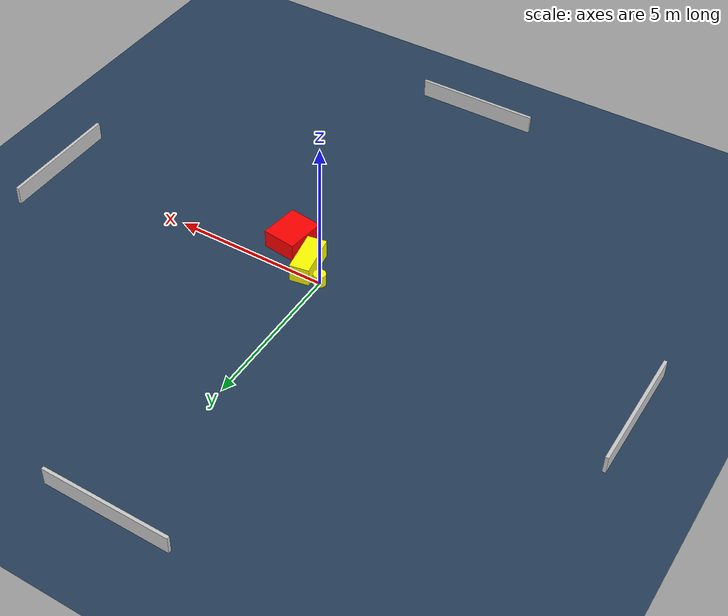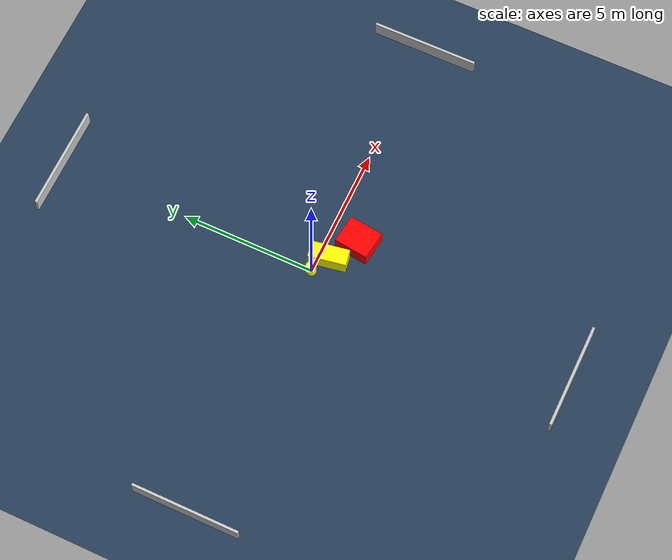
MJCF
<?xml version="1.0" ?>
<mujoco model="generated_environment">
  <option timestep="0.01" integrator="RK4" cone="elliptic"/>
  <default>
    <geom density="1"/>
  </default>
  <asset>
    <texture builtin="gradient" height="3072" name="skybox" rgb1="0.3 0.5 0.7" rgb2="0 0 0" type="skybox" width="512"/>
    <texture builtin="checker" height="300" name="groundplane" rgb1="0.2 0.3 0.4" rgb2="0.1 0.2 0.3" type="2d" width="300"/>
    <material name="groundplane" reflectance="0.2" texrepeat="5 5" texture="groundplane"/>
  </asset>
  <worldbody>
    <light dir="0 0 -1" directional="true" pos="0 0 1.5"/>
    <geom condim="3" friction="0.5 0.005 0.001" material="groundplane" name="floor" pos="0 0 0" size="0 0 0.05" type="plane"/>
    <body name="walls">
      <geom name="wall_1" condim="4" pos="-10.0 0.0 0.3" rgba="0.800000011920929 0.800000011920929 0.800000011920929 1.0" size="0.05 2.0 0.3" type="box"/>
      <geom name="wall_2" condim="4" pos="10.0 0.0 0.3" rgba="0.800000011920929 0.800000011920929 0.800000011920929 1.0" size="0.05 2.0 0.3" type="box"/>
      <geom name="wall_3" condim="4" pos="0.0 -10.0 0.3" rgba="0.800000011920929 0.800000011920929 0.800000011920929 1.0" size="2.0 0.05 0.3" type="box"/>
      <geom name="wall_4" condim="4" pos="0.0 10.0 0.3" rgba="0.800000011920929 0.800000011920929 0.800000011920929 1.0" size="2.0 0.05 0.3" type="box"/>
    </body>
    <body name="robot">
      <joint name="joint_x" type="slide" pos="0 0 0" axis="1 0 0"/>
      <joint name="joint_y" type="slide" pos="0 0 0" axis="0 1 0"/>
      <geom name="robot" type="cylinder" pos="0.0 0.0 0.2" size="0.2 0.2 0.0" mass="5.0" friction="1.0 0.005 0.0001" condim="4" rgba="1.0 1.0 0.0 1.0"/>
    </body>
    <body name="obstacle_1_movable">
      <geom name="obstacle_1_movable" condim="4" pos="0.6497881619114945 -0.3881816017724426 0.3" euler="0 0 9.86654408935034" friction="0.0 0.005 0.001" rgba="1.0 1.0 0.0 1.0" size="0.3127804782016891 0.7084021422367348 0.3" type="box" mass="0.1"/>
      <joint type="free"/>
    </body>
    <body name="obstacle_2_static">
      <geom name="obstacle_2_static" condim="4" pos="1.6733206688421947 -1.0873756390157976 0.3" euler="0 0 82.65638444671615" friction="0.0 0.005 0.001" rgba="1.0 0.0 0.0 1.0" size="0.6451371365464316 0.5458496550140801 0.3" type="box"/>
    </body>
  </worldbody>
  <actuator>
    <motor name="actuator_x" joint="joint_x" gear="1" ctrlrange="-1 1"/>
    <motor name="actuator_y" joint="joint_y" gear="1" ctrlrange="-1 1"/>
  </actuator>
</mujoco>
